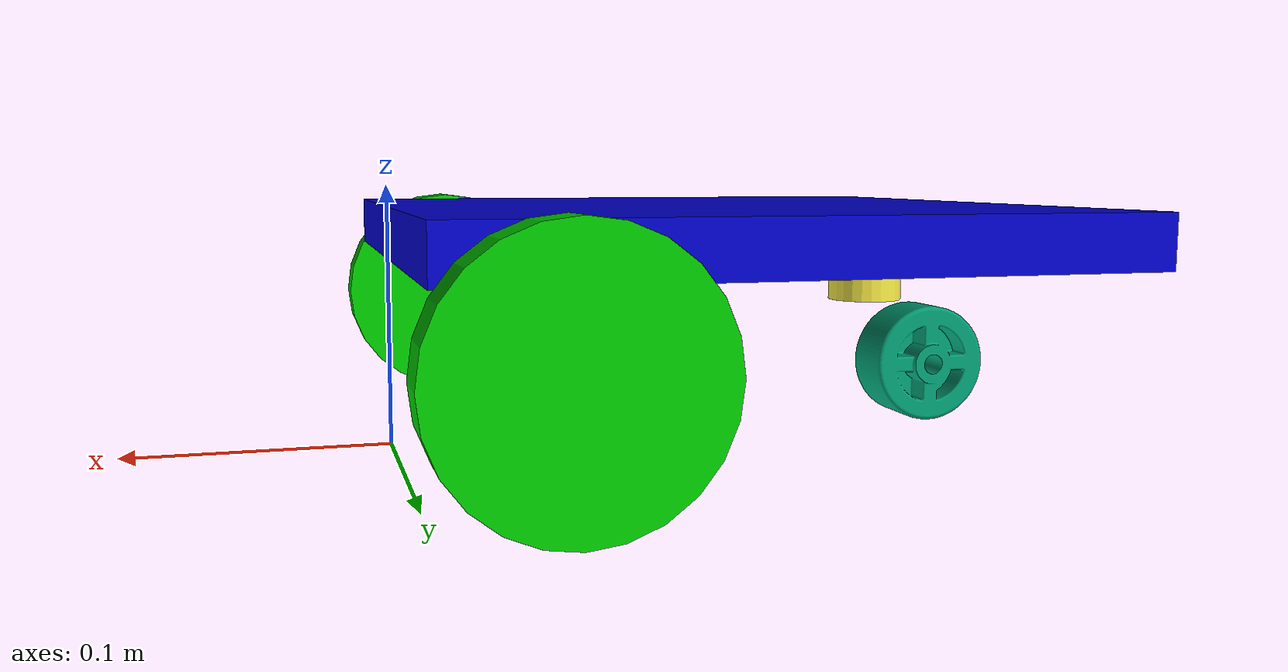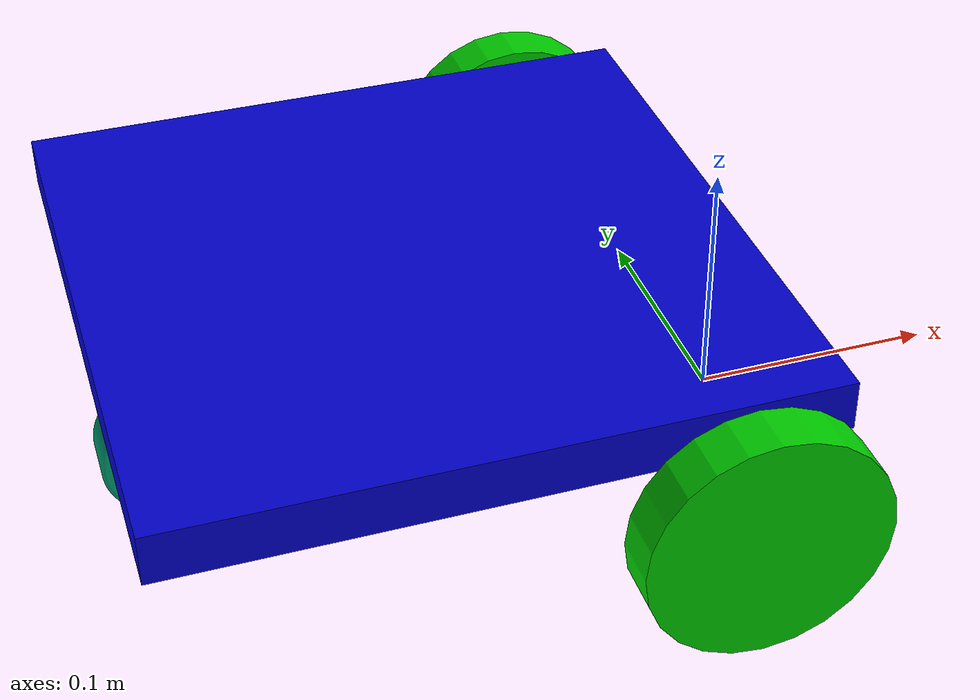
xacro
<?xml version="1.0"?>
<robot  xmlns:xacro="http://ros.org/wiki/xacro"
        name="onebot" >

    <xacro:include filename="$(find onebot_description)/urdf/caster.urdf.xacro" />
    <xacro:include filename="$(find onebot_description)/urdf/wheel.urdf.xacro" />
    <xacro:include filename="$(find onebot_description)/urdf/materials.urdf.xacro" />

    <xacro:arg name="mesh_enabled" default="false" />
    <xacro:arg name="robot_namespace" default="/"/>

    <link   name = "base_link">
        <inertial>
            <origin xyz="-0.108 0 -0.02579" rpy="0 0 0"/>
            <mass value="3.978"/>
            <inertia ixx="0.021858680" ixy="0.0" ixz="0.010020353"
                    iyy="0.078572349" iyz="-0.0"
                    izz="0.091971324"/>
        </inertial>
        <visual>
            <xacro:if value="$(arg mesh_enabled)">
                <origin xyz="0 0 0" rpy="0 0 0" />
                <geometry>
                    <mesh filename="package://onebot_description/meshes/base_link.dae" />
                </geometry>
            </xacro:if>
            <xacro:unless value="$(arg mesh_enabled)">
                <origin xyz="-0.125 0 -0.01" rpy="0 0 0" />
                <geometry>
                    <box size="0.25 0.25 0.02" />
                </geometry>
                <material name="Blue" />
            </xacro:unless>
        </visual>
        <collision>
            <origin xyz="-0.125 0 -0.01" rpy="0 0 0" />
            <geometry>
                <box size="0.25 0.25 0.02" />
            </geometry>
            <material name="Blue" />
        </collision>
    </link>

    <link   name =  "base_footprint"/>

    <joint name = "base_joint"  type = "fixed">
        <parent link="base_footprint"/>
        <child link="base_link"/>
        <origin xyz="0.0 0.0 0.09188" rpy="0 0 0" />
        <axis xyz="0 1 0" rpy="0 0 0" />
    </joint>

    <xacro:caster caster_prefix="rear" parent_link="base_link" >
        <origin xyz="-0.20 0.0 -0.02533" rpy="0 0 0" />
    </xacro:caster>

    <xacro:wheel wheel_prefix="left" parent_link="base_link" >
        <origin xyz="-0.04 0.14 -0.045" rpy="0 0 0" />
    </xacro:wheel>

    <xacro:wheel wheel_prefix="right" parent_link="base_link" >
        <origin xyz="-0.04 -0.14 -0.045" rpy="0 0 0" />
    </xacro:wheel>

    <gazebo>
        <plugin name="gazebo_ros_control" filename="libgazebo_ros_control.so">
        <robotNamespace>$(arg robot_namespace)</robotNamespace>
        <legacyModeNS>true</legacyModeNS>
        </plugin>
    </gazebo>

</robot>

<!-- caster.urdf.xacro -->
<robot xmlns:xacro="http://ros.org/wiki/xacro" >

	<!-- Caster Dimensions -->
    <xacro:property name="caster_wheel_length" value="0.02333" />
    <xacro:property name="caster_wheel_radius" value="0.024165" />
    <xacro:property name="caster_base_length" value="0.015" />
    <xacro:property name="caster_base_radius" value="0.015" />
	<xacro:property name="caster_base_joint_x" value="-0.02626" />
    <xacro:property name="caster_base_joint_z" value="-0.042385" />
    <xacro:property name="caster_base_link_z" value="-0.05615" />
    <xacro:property name="M_PI" value="3.14" />

	<xacro:property name="wheel_kp" value="600000" />
    <xacro:property name="wheel_kd" value="3" />
    <xacro:property name="wheel_mu1" value="10000000" />
    <xacro:property name="wheel_mu2" value="10000000" />

<xacro:macro name="caster" params="caster_prefix parent_link *joint_pose">
		<!-- Caster Wheel Link -->
		<link name="${caster_prefix}_caster_link">
			<inertial>
				<mass value="0.03837" />
				<origin xyz="0 0 0" />
				<inertia  ixx="0.000008221" ixy="0" ixz="0" iyy="0.000013003" iyz="0" izz="0.000008221" />
				</inertial>
			<visual>
                <origin xyz="0 0 0" rpy="${M_PI/2} 0 0" />
				<geometry>
					<mesh filename="package://onebot_description/meshes/caswheel.dae" />
				</geometry>
			</visual>
			<collision>
				<origin xyz="0 0 0" rpy="${M_PI/2} 0 0" />
				<geometry>
					<cylinder length="${caster_wheel_length/2}" radius="${caster_wheel_radius}" />
				</geometry>
			</collision>
		</link>

		<!-- Caster Base Link -->
        <link name="${caster_prefix}_caster_base">
			<inertial>
				<mass value="0.06597" />
				<origin xyz="-0.01204 0 -0.01454" />
				<inertia  ixx="0.000039912" ixy="0" ixz="0.000017794" iyy="0.000050728" iyz="0" izz="0.000035261" />
			</inertial>
			<visual>
				<xacro:if value="$(arg mesh_enabled)">
					<origin xyz="0 0 0" rpy="0 0 0" />
					<geometry>
						<mesh filename="package://onebot_description/meshes/caster_base2.dae" />
					</geometry>
				</xacro:if>
				<xacro:unless value="$(arg mesh_enabled)">
					<origin xyz="0 0 ${-caster_base_length/2}" rpy="0 0 0" />
					<geometry>
						<cylinder length="${caster_base_length}" radius="${caster_base_radius}" />
					</geometry>
				</xacro:unless>

			</visual>
			<collision>
				<origin xyz="0 0 ${-caster_base_length/2}" rpy="0 0 0" />
				<geometry>
					<cylinder length="${caster_base_length}" radius="${caster_base_radius}" />
				</geometry>
			</collision>
		</link>

		<!-- Caster Base Link and Wheel Link Joint -->
        <joint name="${caster_prefix}_cwheel" type="continuous">
			<parent link="${caster_prefix}_caster_base"/>
			<child link="${caster_prefix}_caster_link"/>
			<origin xyz="${caster_base_joint_x} 0 ${caster_base_joint_z}" rpy="0 0 0" />
			<axis xyz="0 1 0" rpy="0 0 0" />

		</joint>

		<!-- Caster base and parent joint -->
		<joint name="${caster_prefix}_caster" type="continuous">
			<parent link="${parent_link}"/>
			<child link="${caster_prefix}_caster_base"/>
			<xacro:insert_block name="joint_pose"/>
			<axis xyz="0 0 1" rpy="0 0 0" />
			<dynamics friction="0.100" />

		</joint>

		<gazebo reference="${caster_prefix}_caster_link">
			<mu1 value="${wheel_mu1}"/>
			<mu2 value="${wheel_mu2}"/>
			<kp>${wheel_kp}</kp>
    		<kd>${wheel_kd}</kd>
			<dampingFactor>0.05</dampingFactor>
			<fdir1 value="1 0 0"/>
		</gazebo>

        <gazebo reference="${caster_prefix}_caster_base">
			<mu1 value="${wheel_mu1}"/>
			<mu2 value="${wheel_mu2}"/>
			<kp>${wheel_kp}</kp>
    		<kd>${wheel_kd}</kd>
			<fdir1 value="1 0 0"/>
		</gazebo>

		<transmission name="${caster_prefix}_caster_trans" type="SimpleTransmission">
			<type>transmission_interface/SimpleTransmission</type>
			<actuator name="${caster_prefix}_caster_motor">
				<mechanicalReduction>1</mechanicalReduction>
			</actuator>
			<joint name="${caster_prefix}_caster">
				<hardwareInterface>hardware_interface/EffortJointInterface</hardwareInterface>
			</joint>
		</transmission>

		<transmission name="${caster_prefix}_casterbase_trans" type="SimpleTransmission">
			<type>transmission_interface/SimpleTransmission</type>
			<actuator name="${caster_prefix}_casterbase_motor">
				<mechanicalReduction>1</mechanicalReduction>
			</actuator>
			<joint name="${caster_prefix}_cwheel">
				<hardwareInterface>hardware_interface/EffortJointInterface</hardwareInterface>
			</joint>
		</transmission>

	</xacro:macro>

</robot>

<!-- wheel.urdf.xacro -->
<robot name="wheel" xmlns:xacro="http://ros.org/wiki/xacro" >

	<xacro:property name="wheel_kp" value="600000" />
    <xacro:property name="wheel_kd" value="3" />
    <xacro:property name="wheel_mu1" value="10000000" />
    <xacro:property name="wheel_mu2" value="10000000" />

<xacro:macro name="wheel" params="wheel_prefix parent_link *joint_pose">

		<!-- Wheel Link -->
		<link name="${wheel_prefix}_wheel_link">
			<inertial>
				<mass value="0.144" />
				<origin xyz="0 0 0" />
				<inertia  ixx="0.00008929863" ixy="0" ixz="0" iyy="0.000168983" iyz="0" izz="0.00008929863" />

			</inertial>
			<visual>
				<material name="Green"/>
				<xacro:if value="$(arg mesh_enabled)">
					<origin xyz="0 0 0" rpy="0 0 ${M_PI/2}" />
					<geometry>
						<mesh filename="package://onebot_description/meshes/wheel.dae" />
					</geometry>
				</xacro:if>
				<xacro:unless value="$(arg mesh_enabled)">
					<origin xyz="0 0 0" rpy="${M_PI/2} 0 0" />
					<geometry>
						<cylinder length="0.02" radius="0.04688" />
					</geometry>
				</xacro:unless>
			</visual>
			<collision>
				<material name="Green"/>
				<origin xyz="0 0 0" rpy="${M_PI/2} 0 0" />
				<geometry>
						<cylinder length="0.02" radius="0.04688" />
				</geometry>
			</collision>
		</link>

		<!-- Wheel Joint -->
		<joint name="${wheel_prefix}_wheel" type="continuous">
			<parent link="${parent_link}"/>
			<child link="${wheel_prefix}_wheel_link"/>
			<xacro:insert_block name="joint_pose"/>
			<axis xyz="0 1 0" rpy="0 0 0" />
			<dynamics damping="0.5" friction="100.0" />
		</joint>

		<!-- mu1 - 100 , mu2 - 100 , kp - 600000 kd -1  -->
		<gazebo reference="${wheel_prefix}_wheel_link">
			<mu1 value="${wheel_mu1}"/>
			<mu2 value="${wheel_mu2}"/>
			<kp>${wheel_kp}</kp>
    		<kd>${wheel_kd}</kd>
			<dampingFactor>0.05</dampingFactor>
			<fdir1 value="1 0 0"/>
		</gazebo>

		<transmission name="${wheel_prefix}_wheel_trans" type="SimpleTransmission">
			<type>transmission_interface/SimpleTransmission</type>
			<actuator name="${wheel_prefix}_wheel_motor">
				<mechanicalReduction>1</mechanicalReduction>
			</actuator>
			<joint name="${wheel_prefix}_wheel">
				<hardwareInterface>hardware_interface/VelocityJointInterface</hardwareInterface>
			</joint>
		</transmission>

</xacro:macro>

</robot>

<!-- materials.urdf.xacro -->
<robot>
  <material name="Blue">
    <color rgba="0.0 0.0 0.8 1.0"/>
  </material>

  <material name="Green">
    <color rgba="0.0 0.8 0.0 1.0"/>
  </material>

  <material name="Grey">
    <color rgba="0.7 0.7 0.7 1.0"/>
  </material>

  <material name="LightGrey">
    <color rgba="0.9 0.9 0.9 1.0"/>
  </material>

 <material name="DarkGrey">
   <color rgba="0.1 0.1 0.1 1.0"/>
 </material>

  <material name="Red">
    <color rgba="0.8 0.0 0.0 1.0"/>
  </material>

  <material name="White">
    <color rgba="1.0 1.0 1.0 1.0"/>
  </material>

  <material name="Yellow">
    <color rgba="0.96 0.88 0.14 1.0"/>
  </material>
</robot>
